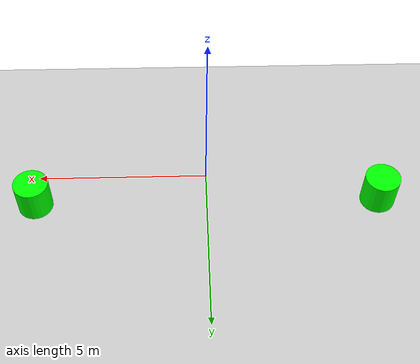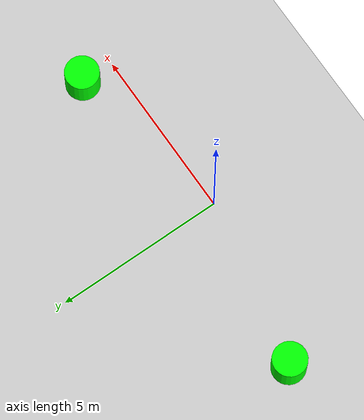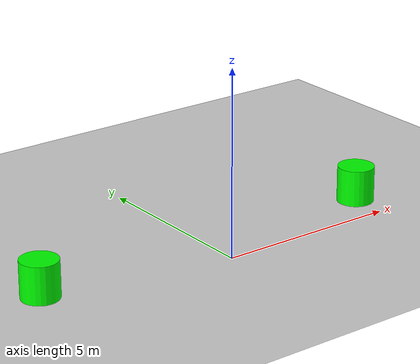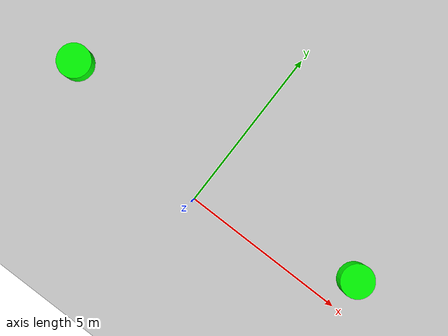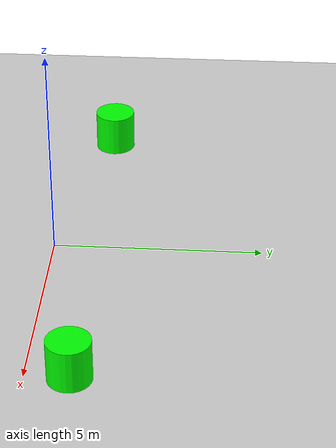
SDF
<?xml version="1.0" ?>
<sdf version='1.9'>
  <world name='tot'>
    <scene>
      <ambient>1 1 1 1</ambient>
      <background>0.8 0.8 0.8 1</background>
      <shadows>true</shadows>
    </scene>
    <gravity>0 0 -9.8</gravity>
    <magnetic_field>6e-06 2.3e-05 -4.2e-05</magnetic_field>
    <atmosphere type='adiabatic'/>
    <physics type='ode'>
      <max_step_size>0.001</max_step_size>
      <real_time_factor>1</real_time_factor>
      <real_time_update_rate>1000</real_time_update_rate>
    </physics>
    <model name='ground_plane'>
      <static>true</static>
      <link name='link'>
        <collision name='collision'>
          <geometry>
            <plane>
              <normal>0 0 1</normal>
              <size>100 100</size>
            </plane>
          </geometry>
          <surface>
            <friction>
              <ode/>
            </friction>
            <bounce/>
            <contact/>
          </surface>
        </collision>
        <visual name='visual'>
          <geometry>
            <plane>
              <normal>0 0 1</normal>
              <size>100 100</size>
            </plane>
          </geometry>
          <material>
            <ambient>0.8 0.8 0.8 1</ambient>
            <diffuse>0.8 0.8 0.8 1</diffuse>
            <specular>0.8 0.8 0.8 1</specular>
          </material>
        </visual>
        <pose>0 0 0 0 -0 0</pose>
        <inertial>
          <pose>0 0 0 0 -0 0</pose>
          <mass>1</mass>
          <inertia>
            <ixx>1</ixx>
            <ixy>0</ixy>
            <ixz>0</ixz>
            <iyy>1</iyy>
            <iyz>0</iyz>
            <izz>1</izz>
          </inertia>
        </inertial>
        <enable_wind>false</enable_wind>
      </link>
      <pose>0 0 0 0 -0 0</pose>
      <self_collide>false</self_collide>
    </model>
    <model name='towerA'>
      <pose>5 1 0.5 0 -0 0</pose>
      <link name='towerA_link'>
        <inertial>
          <inertia>
            <ixx>0.14580000000000001</ixx>
            <ixy>0</ixy>
            <ixz>0</ixz>
            <iyy>0.14580000000000001</iyy>
            <iyz>0</iyz>
            <izz>0.125</izz>
          </inertia>
          <mass>1</mass>
          <pose>0 0 0 0 -0 0</pose>
        </inertial>
        <collision name='towerA_collision'>
          <geometry>
            <cylinder>
              <radius>0.5</radius>
              <length>1</length>
            </cylinder>
          </geometry>
          <surface>
            <friction>
              <ode/>
            </friction>
            <bounce/>
            <contact/>
          </surface>
        </collision>
        <visual name='towerA_visual'>
          <geometry>
            <cylinder>
              <radius>0.5</radius>
              <length>1</length>
            </cylinder>
          </geometry>
          <material>
            <ambient>0 1 0 1</ambient>
            <diffuse>0 1 0 1</diffuse>
            <specular>0 1 0 1</specular>
          </material>
        </visual>
        <pose>0 0 0 0 -0 0</pose>
        <enable_wind>false</enable_wind>
      </link>
      <static>false</static>
      <self_collide>false</self_collide>
    </model>
    <model name='towerB'>
      <pose>-5 1 0.5 0 -0 0</pose>
      <link name='towerB_link'>
        <inertial>
          <inertia>
            <ixx>0.14580000000000001</ixx>
            <ixy>0</ixy>
            <ixz>0</ixz>
            <iyy>0.14580000000000001</iyy>
            <iyz>0</iyz>
            <izz>0.125</izz>
          </inertia>
          <mass>1</mass>
        </inertial>
        <collision name='towerB_collision'>
          <geometry>
            <cylinder>
              <radius>0.5</radius>
              <length>1</length>
            </cylinder>
          </geometry>
          <surface>
            <friction>
              <ode/>
            </friction>
            <bounce/>
            <contact/>
          </surface>
        </collision>
        <visual name='towerB_visual'>
          <geometry>
            <cylinder>
              <radius>0.5</radius>
              <length>1</length>
            </cylinder>
          </geometry>
          <material>
            <ambient>0 1 0 1</ambient>
            <diffuse>0 1 0 1</diffuse>
            <specular>0 1 0 1</specular>
          </material>
        </visual>
      </link>
      <static>false</static>
      <self_collide>false</self_collide>
    </model>
    <light name='sun' type='directional'>
      <pose>0 0 10 0 -0 0</pose>
      <cast_shadows>true</cast_shadows>
      <intensity>1</intensity>
      <direction>-0.5 0.1 -0.9</direction>
      <diffuse>0.8 0.8 0.8 1</diffuse>
      <specular>0.2 0.2 0.2 1</specular>
      <attenuation>
        <range>1000</range>
        <linear>0.01</linear>
        <constant>0.90000000000000002</constant>
        <quadratic>0.001</quadratic>
      </attenuation>
      <spot>
        <inner_angle>0</inner_angle>
        <outer_angle>0</outer_angle>
        <falloff>0</falloff>
      </spot>
    </light>
  </world>
</sdf>
